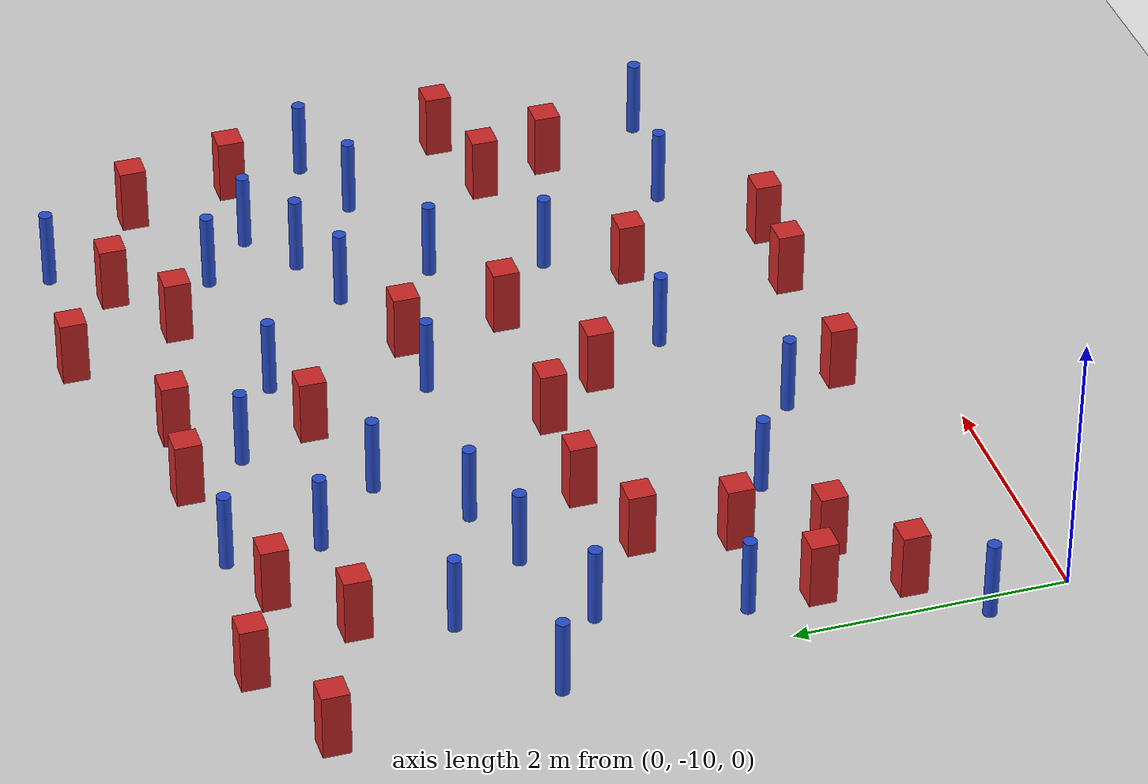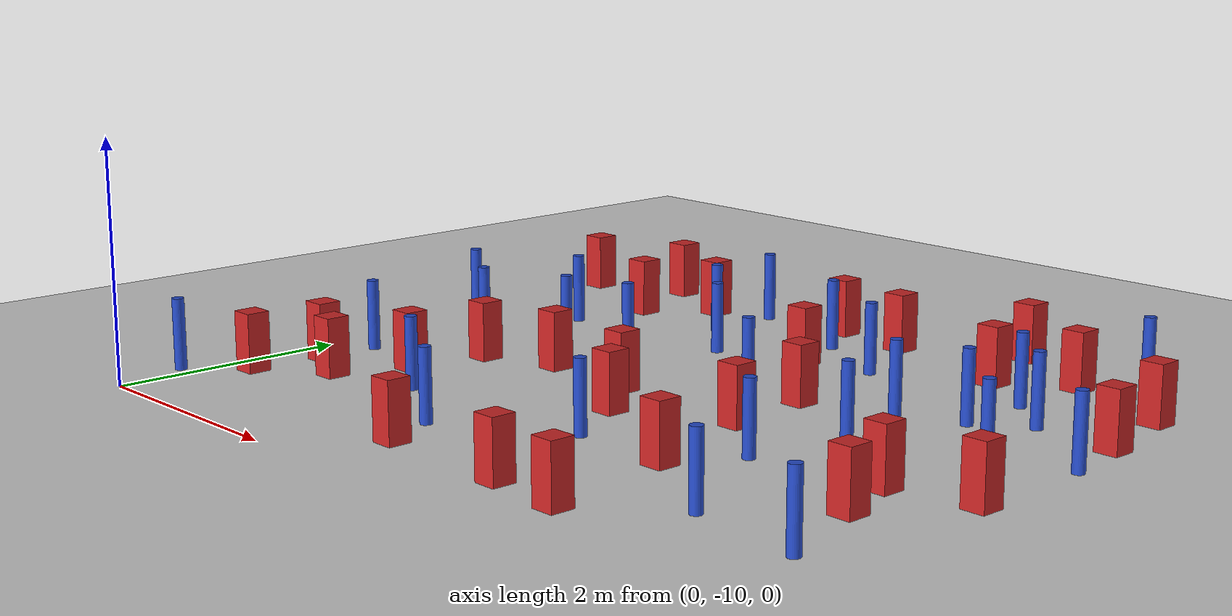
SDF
<sdf version="1.6">
 <world name="default">
  <model name="ground_plane">
   <static>1</static>
   <link name="link">
    <collision name="collision">
     <geometry><plane><normal>0 0 1</normal><size>100 100</size></plane></geometry>
     <surface><friction><ode><mu>100</mu><mu2>50</mu2></ode></friction></surface>
    </collision>
    <visual name="visual">
     <cast_shadows>0</cast_shadows>
     <geometry><plane><normal>0 0 1</normal><size>100 100</size></plane></geometry>
     <material>
      <ambient>1.0 1.0 1.0 1.0</ambient>
      <diffuse>0.8 0.8 0.8 1.0</diffuse>
      <specular>0.01 0.01 0.01 1.000000</specular>
     </material>
    </visual>
   </link>
  </model>
  <model name="square_post_obstacle1">
   <static>true</static>
   <pose>1.90221680884 -7.06881276278 -6.11067671241e-07 -5.50515727128e-06 -8.79689657224e-07 2.37013304536e-05</pose>
   <link name="link">
    <pose>0 0 0.25 0 -0 0</pose>
    <inertial>
     <mass>100</mass>
     <inertia>
      <ixx>0.166667</ixx>
      <ixy>0</ixy>
      <ixz>0</ixz>
      <iyy>0.166667</iyy>
      <iyz>0</iyz>
      <izz>0.166667</izz>
     </inertia>
    </inertial>
    <collision name="collision"><geometry><box><size>.2 .2 .5</size></box></geometry></collision>
    <visual name="visual">
     <geometry><box><size>.2 .2 .5</size></box></geometry>
     <material>
      <script><name>Gazebo/Red</name><uri>file://media/materials/scripts/gazebo.material</uri></script>
     </material>
    </visual>
   </link>
  </model>
  <model name="pole_obstacle3">
   <static>true</static>
   <pose>-0.0956623919668 -6.32274000697 -9.47619616065e-06 5.49618799737e-07 2.36310414062e-07 -1.550905348e-07</pose>
   <link name="link">
    <pose>0 0 0.3 0 -0 0</pose>
    <inertial>
     <mass>1</mass>
     <inertia><ixx>0.145833</ixx><ixy>0</ixy><ixz>0</ixz><iyy>0.145833</iyy><iyz>0</iyz><izz>0.125</izz></inertia>
    </inertial>
    <collision name="collision">
     <geometry><cylinder><radius>0.05</radius><length>.6</length></cylinder></geometry>
    </collision>
    <visual name="visual">
     <geometry><cylinder><radius>0.05</radius><length>.6</length></cylinder></geometry>
     <material>
      <script><name>Gazebo/Blue</name><uri>file://media/materials/scripts/gazebo.material</uri></script>
     </material>
    </visual>
   </link>
  </model>
  <model name="square_post_obstacle10">
   <static>true</static>
   <pose>3.17019763839 -7.59909208464 -6.11067671241e-07 -5.50515727128e-06 -8.79689657224e-07 2.37013304536e-05</pose>
   <link name="link">
    <pose>0 0 0.25 0 -0 0</pose>
    <inertial>
     <mass>100</mass>
     <inertia>
      <ixx>0.166667</ixx>
      <ixy>0</ixy>
      <ixz>0</ixz>
      <iyy>0.166667</iyy>
      <iyz>0</iyz>
      <izz>0.166667</izz>
     </inertia>
    </inertial>
    <collision name="collision"><geometry><box><size>.2 .2 .5</size></box></geometry></collision>
    <visual name="visual">
     <geometry><box><size>.2 .2 .5</size></box></geometry>
     <material>
      <script><name>Gazebo/Red</name><uri>file://media/materials/scripts/gazebo.material</uri></script>
     </material>
    </visual>
   </link>
  </model>
  <model name="square_post_obstacle12">
   <static>true</static>
   <pose>4.40079657541 -8.23585152588 -6.11067671241e-07 -5.50515727128e-06 -8.79689657224e-07 2.37013304536e-05</pose>
   <link name="link">
    <pose>0 0 0.25 0 -0 0</pose>
    <inertial>
     <mass>100</mass>
     <inertia>
      <ixx>0.166667</ixx>
      <ixy>0</ixy>
      <ixz>0</ixz>
      <iyy>0.166667</iyy>
      <iyz>0</iyz>
      <izz>0.166667</izz>
     </inertia>
    </inertial>
    <collision name="collision"><geometry><box><size>.2 .2 .5</size></box></geometry></collision>
    <visual name="visual">
     <geometry><box><size>.2 .2 .5</size></box></geometry>
     <material>
      <script><name>Gazebo/Red</name><uri>file://media/materials/scripts/gazebo.material</uri></script>
     </material>
    </visual>
   </link>
  </model>
  <model name="square_post_obstacle15">
   <static>true</static>
   <pose>0.923780967184 -5.16612636264 -6.11067671241e-07 -5.50515727128e-06 -8.79689657224e-07 2.37013304536e-05</pose>
   <link name="link">
    <pose>0 0 0.25 0 -0 0</pose>
    <inertial>
     <mass>100</mass>
     <inertia>
      <ixx>0.166667</ixx>
      <ixy>0</ixy>
      <ixz>0</ixz>
      <iyy>0.166667</iyy>
      <iyz>0</iyz>
      <izz>0.166667</izz>
     </inertia>
    </inertial>
    <collision name="collision"><geometry><box><size>.2 .2 .5</size></box></geometry></collision>
    <visual name="visual">
     <geometry><box><size>.2 .2 .5</size></box></geometry>
     <material>
      <script><name>Gazebo/Red</name><uri>file://media/materials/scripts/gazebo.material</uri></script>
     </material>
    </visual>
   </link>
  </model>
  <model name="square_post_obstacle17">
   <static>true</static>
   <pose>5.99314138072 -8.07054894317 -6.11067671241e-07 -5.50515727128e-06 -8.79689657224e-07 2.37013304536e-05</pose>
   <link name="link">
    <pose>0 0 0.25 0 -0 0</pose>
    <inertial>
     <mass>100</mass>
     <inertia>
      <ixx>0.166667</ixx>
      <ixy>0</ixy>
      <ixz>0</ixz>
      <iyy>0.166667</iyy>
      <iyz>0</iyz>
      <izz>0.166667</izz>
     </inertia>
    </inertial>
    <collision name="collision"><geometry><box><size>.2 .2 .5</size></box></geometry></collision>
    <visual name="visual">
     <geometry><box><size>.2 .2 .5</size></box></geometry>
     <material>
      <script><name>Gazebo/Red</name><uri>file://media/materials/scripts/gazebo.material</uri></script>
     </material>
    </visual>
   </link>
  </model>
  <model name="pole_obstacle21">
   <static>true</static>
   <pose>3.46122625504 -6.40201713126 -9.47619616065e-06 5.49618799738e-07 2.3631041406e-07 -1.55090534801e-07</pose>
   <link name="link">
    <pose>0 0 0.3 0 -0 0</pose>
    <inertial>
     <mass>1</mass>
     <inertia><ixx>0.145833</ixx><ixy>0</ixy><ixz>0</ixz><iyy>0.145833</iyy><iyz>0</iyz><izz>0.125</izz></inertia>
    </inertial>
    <collision name="collision">
     <geometry><cylinder><radius>0.05</radius><length>.6</length></cylinder></geometry>
    </collision>
    <visual name="visual">
     <geometry><cylinder><radius>0.05</radius><length>.6</length></cylinder></geometry>
     <material>
      <script><name>Gazebo/Blue</name><uri>file://media/materials/scripts/gazebo.material</uri></script>
     </material>
    </visual>
   </link>
  </model>
  <model name="square_post_obstacle20">
   <static>true</static>
   <pose>0.624835009478 -4.36766719274 -6.11067671241e-07 -5.50515727128e-06 -8.79689657224e-07 2.37013304536e-05</pose>
   <link name="link">
    <pose>0 0 0.25 0 -0 0</pose>
    <inertial>
     <mass>100</mass>
     <inertia>
      <ixx>0.166667</ixx>
      <ixy>0</ixy>
      <ixz>0</ixz>
      <iyy>0.166667</iyy>
      <iyz>0</iyz>
      <izz>0.166667</izz>
     </inertia>
    </inertial>
    <collision name="collision"><geometry><box><size>.2 .2 .5</size></box></geometry></collision>
    <visual name="visual">
     <geometry><box><size>.2 .2 .5</size></box></geometry>
     <material>
      <script><name>Gazebo/Red</name><uri>file://media/materials/scripts/gazebo.material</uri></script>
     </material>
    </visual>
   </link>
  </model>
  <model name="square_post_obstacle21">
   <static>true</static>
   <pose>1.1205179076 -7.96489127767 -6.11067671241e-07 -5.50515727128e-06 -8.79689657224e-07 2.37013304536e-05</pose>
   <link name="link">
    <pose>0 0 0.25 0 -0 0</pose>
    <inertial>
     <mass>100</mass>
     <inertia>
      <ixx>0.166667</ixx>
      <ixy>0</ixy>
      <ixz>0</ixz>
      <iyy>0.166667</iyy>
      <iyz>0</iyz>
      <izz>0.166667</izz>
     </inertia>
    </inertial>
    <collision name="collision"><geometry><box><size>.2 .2 .5</size></box></geometry></collision>
    <visual name="visual">
     <geometry><box><size>.2 .2 .5</size></box></geometry>
     <material>
      <script><name>Gazebo/Red</name><uri>file://media/materials/scripts/gazebo.material</uri></script>
     </material>
    </visual>
   </link>
  </model>
  <model name="square_post_obstacle29">
   <static>true</static>
   <pose>6.18455835124 -4.8553304851 -6.11067671241e-07 -5.50515727128e-06 -8.79689657224e-07 2.37013304536e-05</pose>
   <link name="link">
    <pose>0 0 0.25 0 -0 0</pose>
    <inertial>
     <mass>100</mass>
     <inertia>
      <ixx>0.166667</ixx>
      <ixy>0</ixy>
      <ixz>0</ixz>
      <iyy>0.166667</iyy>
      <iyz>0</iyz>
      <izz>0.166667</izz>
     </inertia>
    </inertial>
    <collision name="collision"><geometry><box><size>.2 .2 .5</size></box></geometry></collision>
    <visual name="visual">
     <geometry><box><size>.2 .2 .5</size></box></geometry>
     <material>
      <script><name>Gazebo/Red</name><uri>file://media/materials/scripts/gazebo.material</uri></script>
     </material>
    </visual>
   </link>
  </model>
  <model name="pole_obstacle36">
   <static>true</static>
   <pose>2.41987937067 -5.7076169311 -9.47619616065e-06 5.49618799738e-07 2.3631041406e-07 -1.55090534801e-07</pose>
   <link name="link">
    <pose>0 0 0.3 0 -0 0</pose>
    <inertial>
     <mass>1</mass>
     <inertia><ixx>0.145833</ixx><ixy>0</ixy><ixz>0</ixz><iyy>0.145833</iyy><iyz>0</iyz><izz>0.125</izz></inertia>
    </inertial>
    <collision name="collision">
     <geometry><cylinder><radius>0.05</radius><length>.6</length></cylinder></geometry>
    </collision>
    <visual name="visual">
     <geometry><cylinder><radius>0.05</radius><length>.6</length></cylinder></geometry>
     <material>
      <script><name>Gazebo/Blue</name><uri>file://media/materials/scripts/gazebo.material</uri></script>
     </material>
    </visual>
   </link>
  </model>
  <model name="pole_obstacle39">
   <static>true</static>
   <pose>-0.154270674487 -9.36307981008 -9.47619616065e-06 5.49618799737e-07 2.36310414038e-07 -1.55090534815e-07</pose>
   <link name="link">
    <pose>0 0 0.3 0 -0 0</pose>
    <inertial>
     <mass>1</mass>
     <inertia><ixx>0.145833</ixx><ixy>0</ixy><ixz>0</ixz><iyy>0.145833</iyy><iyz>0</iyz><izz>0.125</izz></inertia>
    </inertial>
    <collision name="collision">
     <geometry><cylinder><radius>0.05</radius><length>.6</length></cylinder></geometry>
    </collision>
    <visual name="visual">
     <geometry><cylinder><radius>0.05</radius><length>.6</length></cylinder></geometry>
     <material>
      <script><name>Gazebo/Blue</name><uri>file://media/materials/scripts/gazebo.material</uri></script>
     </material>
    </visual>
   </link>
  </model>
  <model name="square_post_obstacle34">
   <static>true</static>
   <pose>4.6058372491 -9.38448085842 -6.11067671241e-07 -5.50515727128e-06 -8.79689657224e-07 2.37013304536e-05</pose>
   <link name="link">
    <pose>0 0 0.25 0 -0 0</pose>
    <inertial>
     <mass>100</mass>
     <inertia>
      <ixx>0.166667</ixx>
      <ixy>0</ixy>
      <ixz>0</ixz>
      <iyy>0.166667</iyy>
      <iyz>0</iyz>
      <izz>0.166667</izz>
     </inertia>
    </inertial>
    <collision name="collision"><geometry><box><size>.2 .2 .5</size></box></geometry></collision>
    <visual name="visual">
     <geometry><box><size>.2 .2 .5</size></box></geometry>
     <material>
      <script><name>Gazebo/Red</name><uri>file://media/materials/scripts/gazebo.material</uri></script>
     </material>
    </visual>
   </link>
  </model>
  <model name="pole_obstacle44">
   <static>true</static>
   <pose>5.86850376428 -6.47492850692 -9.47619616065e-06 5.49618799737e-07 2.36310414037e-07 -1.55090534814e-07</pose>
   <link name="link">
    <pose>0 0 0.3 0 -0 0</pose>
    <inertial>
     <mass>1</mass>
     <inertia><ixx>0.145833</ixx><ixy>0</ixy><ixz>0</ixz><iyy>0.145833</iyy><iyz>0</iyz><izz>0.125</izz></inertia>
    </inertial>
    <collision name="collision">
     <geometry><cylinder><radius>0.05</radius><length>.6</length></cylinder></geometry>
    </collision>
    <visual name="visual">
     <geometry><cylinder><radius>0.05</radius><length>.6</length></cylinder></geometry>
     <material>
      <script><name>Gazebo/Blue</name><uri>file://media/materials/scripts/gazebo.material</uri></script>
     </material>
    </visual>
   </link>
  </model>
  <model name="pole_obstacle54">
   <static>true</static>
   <pose>4.70921393497 -6.09440306685 -9.47619616065e-06 5.49618799737e-07 2.36310414037e-07 -1.55090534814e-07</pose>
   <link name="link">
    <pose>0 0 0.3 0 -0 0</pose>
    <inertial>
     <mass>1</mass>
     <inertia><ixx>0.145833</ixx><ixy>0</ixy><ixz>0</ixz><iyy>0.145833</iyy><iyz>0</iyz><izz>0.125</izz></inertia>
    </inertial>
    <collision name="collision">
     <geometry><cylinder><radius>0.05</radius><length>.6</length></cylinder></geometry>
    </collision>
    <visual name="visual">
     <geometry><cylinder><radius>0.05</radius><length>.6</length></cylinder></geometry>
     <material>
      <script><name>Gazebo/Blue</name><uri>file://media/materials/scripts/gazebo.material</uri></script>
     </material>
    </visual>
   </link>
  </model>
  <model name="pole_obstacle55">
   <static>true</static>
   <pose>5.59335642889 -4.07822413194 -9.47619616065e-06 5.49618799737e-07 2.36310414037e-07 -1.55090534814e-07</pose>
   <link name="link">
    <pose>0 0 0.3 0 -0 0</pose>
    <inertial>
     <mass>1</mass>
     <inertia><ixx>0.145833</ixx><ixy>0</ixy><ixz>0</ixz><iyy>0.145833</iyy><iyz>0</iyz><izz>0.125</izz></inertia>
    </inertial>
    <collision name="collision">
     <geometry><cylinder><radius>0.05</radius><length>.6</length></cylinder></geometry>
    </collision>
    <visual name="visual">
     <geometry><cylinder><radius>0.05</radius><length>.6</length></cylinder></geometry>
     <material>
      <script><name>Gazebo/Blue</name><uri>file://media/materials/scripts/gazebo.material</uri></script>
     </material>
    </visual>
   </link>
  </model>
  <model name="square_post_obstacle49">
   <static>true</static>
   <pose>3.93376461186 -9.32738936467 -6.11067671241e-07 -5.50515727128e-06 -8.79689657224e-07 2.37013304536e-05</pose>
   <link name="link">
    <pose>0 0 0.25 0 -0 0</pose>
    <inertial>
     <mass>100</mass>
     <inertia>
      <ixx>0.166667</ixx>
      <ixy>0</ixy>
      <ixz>0</ixz>
      <iyy>0.166667</iyy>
      <iyz>0</iyz>
      <izz>0.166667</izz>
     </inertia>
    </inertial>
    <collision name="collision"><geometry><box><size>.2 .2 .5</size></box></geometry></collision>
    <visual name="visual">
     <geometry><box><size>.2 .2 .5</size></box></geometry>
     <material>
      <script><name>Gazebo/Red</name><uri>file://media/materials/scripts/gazebo.material</uri></script>
     </material>
    </visual>
   </link>
  </model>
  <model name="pole_obstacle65">
   <static>true</static>
   <pose>0.762552935195 -5.82408993709 -9.47619616065e-06 5.49618799737e-07 2.36310414065e-07 -1.55090534796e-07</pose>
   <link name="link">
    <pose>0 0 0.3 0 -0 0</pose>
    <inertial>
     <mass>1</mass>
     <inertia><ixx>0.145833</ixx><ixy>0</ixy><ixz>0</ixz><iyy>0.145833</iyy><iyz>0</iyz><izz>0.125</izz></inertia>
    </inertial>
    <collision name="collision">
     <geometry><cylinder><radius>0.05</radius><length>.6</length></cylinder></geometry>
    </collision>
    <visual name="visual">
     <geometry><cylinder><radius>0.05</radius><length>.6</length></cylinder></geometry>
     <material>
      <script><name>Gazebo/Blue</name><uri>file://media/materials/scripts/gazebo.material</uri></script>
     </material>
    </visual>
   </link>
  </model>
  <model name="square_post_obstacle50">
   <static>true</static>
   <pose>0.278762487672 -8.93921164825 -6.11067671241e-07 -5.50515727128e-06 -8.79689657224e-07 2.37013304536e-05</pose>
   <link name="link">
    <pose>0 0 0.25 0 -0 0</pose>
    <inertial>
     <mass>100</mass>
     <inertia>
      <ixx>0.166667</ixx>
      <ixy>0</ixy>
      <ixz>0</ixz>
      <iyy>0.166667</iyy>
      <iyz>0</iyz>
      <izz>0.166667</izz>
     </inertia>
    </inertial>
    <collision name="collision"><geometry><box><size>.2 .2 .5</size></box></geometry></collision>
    <visual name="visual">
     <geometry><box><size>.2 .2 .5</size></box></geometry>
     <material>
      <script><name>Gazebo/Red</name><uri>file://media/materials/scripts/gazebo.material</uri></script>
     </material>
    </visual>
   </link>
  </model>
  <model name="pole_obstacle67">
   <static>true</static>
   <pose>1.88777173425 -4.50713236287 -9.47619616065e-06 5.49618799737e-07 2.36310414061e-07 -1.550905348e-07</pose>
   <link name="link">
    <pose>0 0 0.3 0 -0 0</pose>
    <inertial>
     <mass>1</mass>
     <inertia><ixx>0.145833</ixx><ixy>0</ixy><ixz>0</ixz><iyy>0.145833</iyy><iyz>0</iyz><izz>0.125</izz></inertia>
    </inertial>
    <collision name="collision">
     <geometry><cylinder><radius>0.05</radius><length>.6</length></cylinder></geometry>
    </collision>
    <visual name="visual">
     <geometry><cylinder><radius>0.05</radius><length>.6</length></cylinder></geometry>
     <material>
      <script><name>Gazebo/Blue</name><uri>file://media/materials/scripts/gazebo.material</uri></script>
     </material>
    </visual>
   </link>
  </model>
  <model name="square_post_obstacle59">
   <static>true</static>
   <pose>6.49951302498 -7.34494164126 -6.11067671241e-07 -5.50515727128e-06 -8.79689657224e-07 2.37013304536e-05</pose>
   <link name="link">
    <pose>0 0 0.25 0 -0 0</pose>
    <inertial>
     <mass>100</mass>
     <inertia>
      <ixx>0.166667</ixx>
      <ixy>0</ixy>
      <ixz>0</ixz>
      <iyy>0.166667</iyy>
      <iyz>0</iyz>
      <izz>0.166667</izz>
     </inertia>
    </inertial>
    <collision name="collision"><geometry><box><size>.2 .2 .5</size></box></geometry></collision>
    <visual name="visual">
     <geometry><box><size>.2 .2 .5</size></box></geometry>
     <material>
      <script><name>Gazebo/Red</name><uri>file://media/materials/scripts/gazebo.material</uri></script>
     </material>
    </visual>
   </link>
  </model>
  <model name="pole_obstacle71">
   <static>true</static>
   <pose>2.48449733833 -8.82898248215 -9.4761961606e-06 5.49618799729e-07 2.36310414e-07 -1.55090534824e-07</pose>
   <link name="link">
    <pose>0 0 0.3 0 -0 0</pose>
    <inertial>
     <mass>1</mass>
     <inertia><ixx>0.145833</ixx><ixy>0</ixy><ixz>0</ixz><iyy>0.145833</iyy><iyz>0</iyz><izz>0.125</izz></inertia>
    </inertial>
    <collision name="collision">
     <geometry><cylinder><radius>0.05</radius><length>.6</length></cylinder></geometry>
    </collision>
    <visual name="visual">
     <geometry><cylinder><radius>0.05</radius><length>.6</length></cylinder></geometry>
     <material>
      <script><name>Gazebo/Blue</name><uri>file://media/materials/scripts/gazebo.material</uri></script>
     </material>
    </visual>
   </link>
  </model>
  <model name="pole_obstacle73">
   <static>true</static>
   <pose>1.90508628922 -6.26551752722 -9.47619616065e-06 5.49618799737e-07 2.36310414061e-07 -1.550905348e-07</pose>
   <link name="link">
    <pose>0 0 0.3 0 -0 0</pose>
    <inertial>
     <mass>1</mass>
     <inertia><ixx>0.145833</ixx><ixy>0</ixy><ixz>0</ixz><iyy>0.145833</iyy><iyz>0</iyz><izz>0.125</izz></inertia>
    </inertial>
    <collision name="collision">
     <geometry><cylinder><radius>0.05</radius><length>.6</length></cylinder></geometry>
    </collision>
    <visual name="visual">
     <geometry><cylinder><radius>0.05</radius><length>.6</length></cylinder></geometry>
     <material>
      <script><name>Gazebo/Blue</name><uri>file://media/materials/scripts/gazebo.material</uri></script>
     </material>
    </visual>
   </link>
  </model>
  <model name="pole_obstacle80">
   <static>true</static>
   <pose>3.50712779258 -8.19455391345 -9.4761961606e-06 5.49618799729e-07 2.36310414e-07 -1.55090534824e-07</pose>
   <link name="link">
    <pose>0 0 0.3 0 -0 0</pose>
    <inertial>
     <mass>1</mass>
     <inertia><ixx>0.145833</ixx><ixy>0</ixy><ixz>0</ixz><iyy>0.145833</iyy><iyz>0</iyz><izz>0.125</izz></inertia>
    </inertial>
    <collision name="collision">
     <geometry><cylinder><radius>0.05</radius><length>.6</length></cylinder></geometry>
    </collision>
    <visual name="visual">
     <geometry><cylinder><radius>0.05</radius><length>.6</length></cylinder></geometry>
     <material>
      <script><name>Gazebo/Blue</name><uri>file://media/materials/scripts/gazebo.material</uri></script>
     </material>
    </visual>
   </link>
  </model>
  <model name="pole_obstacle88">
   <static>true</static>
   <pose>1.89037246556 -5.18558917002 -9.47619616065e-06 5.49618799737e-07 2.36310414061e-07 -1.550905348e-07</pose>
   <link name="link">
    <pose>0 0 0.3 0 -0 0</pose>
    <inertial>
     <mass>1</mass>
     <inertia><ixx>0.145833</ixx><ixy>0</ixy><ixz>0</ixz><iyy>0.145833</iyy><iyz>0</iyz><izz>0.125</izz></inertia>
    </inertial>
    <collision name="collision">
     <geometry><cylinder><radius>0.05</radius><length>.6</length></cylinder></geometry>
    </collision>
    <visual name="visual">
     <geometry><cylinder><radius>0.05</radius><length>.6</length></cylinder></geometry>
     <material>
      <script><name>Gazebo/Blue</name><uri>file://media/materials/scripts/gazebo.material</uri></script>
     </material>
    </visual>
   </link>
  </model>
  <model name="square_post_obstacle79">
   <static>true</static>
   <pose>0.36819951724 -8.30636449771 -6.11067671241e-07 -5.50515727128e-06 -8.79689657224e-07 2.37013304536e-05</pose>
   <link name="link">
    <pose>0 0 0.25 0 -0 0</pose>
    <inertial>
     <mass>100</mass>
     <inertia>
      <ixx>0.166667</ixx>
      <ixy>0</ixy>
      <ixz>0</ixz>
      <iyy>0.166667</iyy>
      <iyz>0</iyz>
      <izz>0.166667</izz>
     </inertia>
    </inertial>
    <collision name="collision"><geometry><box><size>.2 .2 .5</size></box></geometry></collision>
    <visual name="visual">
     <geometry><box><size>.2 .2 .5</size></box></geometry>
     <material>
      <script><name>Gazebo/Red</name><uri>file://media/materials/scripts/gazebo.material</uri></script>
     </material>
    </visual>
   </link>
  </model>
  <model name="pole_obstacle92">
   <static>true</static>
   <pose>0.360559666833 -7.79410350933 -9.47619616065e-06 5.49618799737e-07 2.36310414065e-07 -1.55090534796e-07</pose>
   <link name="link">
    <pose>0 0 0.3 0 -0 0</pose>
    <inertial>
     <mass>1</mass>
     <inertia><ixx>0.145833</ixx><ixy>0</ixy><ixz>0</ixz><iyy>0.145833</iyy><iyz>0</iyz><izz>0.125</izz></inertia>
    </inertial>
    <collision name="collision">
     <geometry><cylinder><radius>0.05</radius><length>.6</length></cylinder></geometry>
    </collision>
    <visual name="visual">
     <geometry><cylinder><radius>0.05</radius><length>.6</length></cylinder></geometry>
     <material>
      <script><name>Gazebo/Blue</name><uri>file://media/materials/scripts/gazebo.material</uri></script>
     </material>
    </visual>
   </link>
  </model>
  <model name="pole_obstacle95">
   <static>true</static>
   <pose>5.21282685171 -5.21101258975 -9.47619616065e-06 5.49618799737e-07 2.36310414037e-07 -1.55090534814e-07</pose>
   <link name="link">
    <pose>0 0 0.3 0 -0 0</pose>
    <inertial>
     <mass>1</mass>
     <inertia><ixx>0.145833</ixx><ixy>0</ixy><ixz>0</ixz><iyy>0.145833</iyy><iyz>0</iyz><izz>0.125</izz></inertia>
    </inertial>
    <collision name="collision">
     <geometry><cylinder><radius>0.05</radius><length>.6</length></cylinder></geometry>
    </collision>
    <visual name="visual">
     <geometry><cylinder><radius>0.05</radius><length>.6</length></cylinder></geometry>
     <material>
      <script><name>Gazebo/Blue</name><uri>file://media/materials/scripts/gazebo.material</uri></script>
     </material>
    </visual>
   </link>
  </model>
  <model name="square_post_obstacle120">
   <static>true</static>
   <pose>3.19070530143 -5.45883548213 -6.11067671241e-07 -5.50515727128e-06 -8.79689657224e-07 2.37013304536e-05</pose>
   <link name="link">
    <pose>0 0 0.25 0 -0 0</pose>
    <inertial>
     <mass>100</mass>
     <inertia>
      <ixx>0.166667</ixx>
      <ixy>0</ixy>
      <ixz>0</ixz>
      <iyy>0.166667</iyy>
      <iyz>0</iyz>
      <izz>0.166667</izz>
     </inertia>
    </inertial>
    <collision name="collision"><geometry><box><size>.2 .2 .5</size></box></geometry></collision>
    <visual name="visual">
     <geometry><box><size>.2 .2 .5</size></box></geometry>
     <material>
      <script><name>Gazebo/Red</name><uri>file://media/materials/scripts/gazebo.material</uri></script>
     </material>
    </visual>
   </link>
  </model>
  <model name="pole_obstacle124">
   <static>true</static>
   <pose>3.78200364046 -5.30811447415 -9.47619616065e-06 5.49618799738e-07 2.3631041406e-07 -1.55090534801e-07</pose>
   <link name="link">
    <pose>0 0 0.3 0 -0 0</pose>
    <inertial>
     <mass>1</mass>
     <inertia><ixx>0.145833</ixx><ixy>0</ixy><ixz>0</ixz><iyy>0.145833</iyy><iyz>0</iyz><izz>0.125</izz></inertia>
    </inertial>
    <collision name="collision">
     <geometry><cylinder><radius>0.05</radius><length>.6</length></cylinder></geometry>
    </collision>
    <visual name="visual">
     <geometry><cylinder><radius>0.05</radius><length>.6</length></cylinder></geometry>
     <material>
      <script><name>Gazebo/Blue</name><uri>file://media/materials/scripts/gazebo.material</uri></script>
     </material>
    </visual>
   </link>
  </model>
  <model name="square_post_obstacle127">
   <static>true</static>
   <pose>4.66207362287 -4.8289467398 -6.11067671241e-07 -5.50515727128e-06 -8.79689657224e-07 2.37013304536e-05</pose>
   <link name="link">
    <pose>0 0 0.25 0 -0 0</pose>
    <inertial>
     <mass>100</mass>
     <inertia>
      <ixx>0.166667</ixx>
      <ixy>0</ixy>
      <ixz>0</ixz>
      <iyy>0.166667</iyy>
      <iyz>0</iyz>
      <izz>0.166667</izz>
     </inertia>
    </inertial>
    <collision name="collision"><geometry><box><size>.2 .2 .5</size></box></geometry></collision>
    <visual name="visual">
     <geometry><box><size>.2 .2 .5</size></box></geometry>
     <material>
      <script><name>Gazebo/Red</name><uri>file://media/materials/scripts/gazebo.material</uri></script>
     </material>
    </visual>
   </link>
  </model>
  <model name="square_post_obstacle128">
   <static>true</static>
   <pose>2.72873598612 -4.43685192855 -6.11067671241e-07 -5.50515727128e-06 -8.79689657224e-07 2.37013304536e-05</pose>
   <link name="link">
    <pose>0 0 0.25 0 -0 0</pose>
    <inertial>
     <mass>100</mass>
     <inertia>
      <ixx>0.166667</ixx>
      <ixy>0</ixy>
      <ixz>0</ixz>
      <iyy>0.166667</iyy>
      <iyz>0</iyz>
      <izz>0.166667</izz>
     </inertia>
    </inertial>
    <collision name="collision"><geometry><box><size>.2 .2 .5</size></box></geometry></collision>
    <visual name="visual">
     <geometry><box><size>.2 .2 .5</size></box></geometry>
     <material>
      <script><name>Gazebo/Red</name><uri>file://media/materials/scripts/gazebo.material</uri></script>
     </material>
    </visual>
   </link>
  </model>
  <model name="square_post_obstacle137">
   <static>true</static>
   <pose>0.850056143519 -8.5500607031 -6.11067671241e-07 -5.50515727128e-06 -8.79689657224e-07 2.37013304536e-05</pose>
   <link name="link">
    <pose>0 0 0.25 0 -0 0</pose>
    <inertial>
     <mass>100</mass>
     <inertia>
      <ixx>0.166667</ixx>
      <ixy>0</ixy>
      <ixz>0</ixz>
      <iyy>0.166667</iyy>
      <iyz>0</iyz>
      <izz>0.166667</izz>
     </inertia>
    </inertial>
    <collision name="collision"><geometry><box><size>.2 .2 .5</size></box></geometry></collision>
    <visual name="visual">
     <geometry><box><size>.2 .2 .5</size></box></geometry>
     <material>
      <script><name>Gazebo/Red</name><uri>file://media/materials/scripts/gazebo.material</uri></script>
     </material>
    </visual>
   </link>
  </model>
  <model name="square_post_obstacle149">
   <static>true</static>
   <pose>4.38998303831 -3.99117839104 -6.11067671241e-07 -5.50515727128e-06 -8.79689657224e-07 2.37013304536e-05</pose>
   <link name="link">
    <pose>0 0 0.25 0 -0 0</pose>
    <inertial>
     <mass>100</mass>
     <inertia>
      <ixx>0.166667</ixx>
      <ixy>0</ixy>
      <ixz>0</ixz>
      <iyy>0.166667</iyy>
      <iyz>0</iyz>
      <izz>0.166667</izz>
     </inertia>
    </inertial>
    <collision name="collision"><geometry><box><size>.2 .2 .5</size></box></geometry></collision>
    <visual name="visual">
     <geometry><box><size>.2 .2 .5</size></box></geometry>
     <material>
      <script><name>Gazebo/Red</name><uri>file://media/materials/scripts/gazebo.material</uri></script>
     </material>
    </visual>
   </link>
  </model>
  <model name="pole_obstacle154">
   <static>true</static>
   <pose>3.00690768177 -4.90442672456 -9.47619616065e-06 5.49618799738e-07 2.3631041406e-07 -1.55090534801e-07</pose>
   <link name="link">
    <pose>0 0 0.3 0 -0 0</pose>
    <inertial>
     <mass>1</mass>
     <inertia><ixx>0.145833</ixx><ixy>0</ixy><ixz>0</ixz><iyy>0.145833</iyy><iyz>0</iyz><izz>0.125</izz></inertia>
    </inertial>
    <collision name="collision">
     <geometry><cylinder><radius>0.05</radius><length>.6</length></cylinder></geometry>
    </collision>
    <visual name="visual">
     <geometry><cylinder><radius>0.05</radius><length>.6</length></cylinder></geometry>
     <material>
      <script><name>Gazebo/Blue</name><uri>file://media/materials/scripts/gazebo.material</uri></script>
     </material>
    </visual>
   </link>
  </model>
  <model name="square_post_obstacle152">
   <static>true</static>
   <pose>4.08668692918 -7.16434014384 -6.11067671241e-07 -5.50515727128e-06 -8.79689657224e-07 2.37013304536e-05</pose>
   <link name="link">
    <pose>0 0 0.25 0 -0 0</pose>
    <inertial>
     <mass>100</mass>
     <inertia>
      <ixx>0.166667</ixx>
      <ixy>0</ixy>
      <ixz>0</ixz>
      <iyy>0.166667</iyy>
      <iyz>0</iyz>
      <izz>0.166667</izz>
     </inertia>
    </inertial>
    <collision name="collision"><geometry><box><size>.2 .2 .5</size></box></geometry></collision>
    <visual name="visual">
     <geometry><box><size>.2 .2 .5</size></box></geometry>
     <material>
      <script><name>Gazebo/Red</name><uri>file://media/materials/scripts/gazebo.material</uri></script>
     </material>
    </visual>
   </link>
  </model>
  <model name="pole_obstacle158">
   <static>true</static>
   <pose>4.87582728599 -6.82598247941 -9.47619616065e-06 5.49618799737e-07 2.36310414037e-07 -1.55090534814e-07</pose>
   <link name="link">
    <pose>0 0 0.3 0 -0 0</pose>
    <inertial>
     <mass>1</mass>
     <inertia><ixx>0.145833</ixx><ixy>0</ixy><ixz>0</ixz><iyy>0.145833</iyy><iyz>0</iyz><izz>0.125</izz></inertia>
    </inertial>
    <collision name="collision">
     <geometry><cylinder><radius>0.05</radius><length>.6</length></cylinder></geometry>
    </collision>
    <visual name="visual">
     <geometry><cylinder><radius>0.05</radius><length>.6</length></cylinder></geometry>
     <material>
      <script><name>Gazebo/Blue</name><uri>file://media/materials/scripts/gazebo.material</uri></script>
     </material>
    </visual>
   </link>
  </model>
  <model name="square_post_obstacle157">
   <static>true</static>
   <pose>2.70108148153 -9.29278653202 -6.11067671241e-07 -5.50515727128e-06 -8.79689657224e-07 2.37013304536e-05</pose>
   <link name="link">
    <pose>0 0 0.25 0 -0 0</pose>
    <inertial>
     <mass>100</mass>
     <inertia>
      <ixx>0.166667</ixx>
      <ixy>0</ixy>
      <ixz>0</ixz>
      <iyy>0.166667</iyy>
      <iyz>0</iyz>
      <izz>0.166667</izz>
     </inertia>
    </inertial>
    <collision name="collision"><geometry><box><size>.2 .2 .5</size></box></geometry></collision>
    <visual name="visual">
     <geometry><box><size>.2 .2 .5</size></box></geometry>
     <material>
      <script><name>Gazebo/Red</name><uri>file://media/materials/scripts/gazebo.material</uri></script>
     </material>
    </visual>
   </link>
  </model>
  <model name="square_post_obstacle159">
   <static>true</static>
   <pose>1.25657172562 -7.29005758324 -6.11067671241e-07 -5.50515727128e-06 -8.79689657224e-07 2.37013304536e-05</pose>
   <link name="link">
    <pose>0 0 0.25 0 -0 0</pose>
    <inertial>
     <mass>100</mass>
     <inertia>
      <ixx>0.166667</ixx>
      <ixy>0</ixy>
      <ixz>0</ixz>
      <iyy>0.166667</iyy>
      <iyz>0</iyz>
      <izz>0.166667</izz>
     </inertia>
    </inertial>
    <collision name="collision"><geometry><box><size>.2 .2 .5</size></box></geometry></collision>
    <visual name="visual">
     <geometry><box><size>.2 .2 .5</size></box></geometry>
     <material>
      <script><name>Gazebo/Red</name><uri>file://media/materials/scripts/gazebo.material</uri></script>
     </material>
    </visual>
   </link>
  </model>
  <model name="square_post_obstacle162">
   <static>true</static>
   <pose>1.40677673367 -4.71373804411 -6.11067671241e-07 -5.50515727128e-06 -8.79689657224e-07 2.37013304536e-05</pose>
   <link name="link">
    <pose>0 0 0.25 0 -0 0</pose>
    <inertial>
     <mass>100</mass>
     <inertia>
      <ixx>0.166667</ixx>
      <ixy>0</ixy>
      <ixz>0</ixz>
      <iyy>0.166667</iyy>
      <iyz>0</iyz>
      <izz>0.166667</izz>
     </inertia>
    </inertial>
    <collision name="collision"><geometry><box><size>.2 .2 .5</size></box></geometry></collision>
    <visual name="visual">
     <geometry><box><size>.2 .2 .5</size></box></geometry>
     <material>
      <script><name>Gazebo/Red</name><uri>file://media/materials/scripts/gazebo.material</uri></script>
     </material>
    </visual>
   </link>
  </model>
  <model name="pole_obstacle166">
   <static>true</static>
   <pose>5.31172259696 -8.77553307049 -9.47619616065e-06 5.49618799737e-07 2.36310414065e-07 -1.55090534796e-07</pose>
   <link name="link">
    <pose>0 0 0.3 0 -0 0</pose>
    <inertial>
     <mass>1</mass>
     <inertia><ixx>0.145833</ixx><ixy>0</ixy><ixz>0</ixz><iyy>0.145833</iyy><iyz>0</iyz><izz>0.125</izz></inertia>
    </inertial>
    <collision name="collision">
     <geometry><cylinder><radius>0.05</radius><length>.6</length></cylinder></geometry>
    </collision>
    <visual name="visual">
     <geometry><cylinder><radius>0.05</radius><length>.6</length></cylinder></geometry>
     <material>
      <script><name>Gazebo/Blue</name><uri>file://media/materials/scripts/gazebo.material</uri></script>
     </material>
    </visual>
   </link>
  </model>
  <model name="square_post_obstacle166">
   <static>true</static>
   <pose>5.80939817268 -7.51534573787 -6.11067671241e-07 -5.50515727128e-06 -8.79689657224e-07 2.37013304536e-05</pose>
   <link name="link">
    <pose>0 0 0.25 0 -0 0</pose>
    <inertial>
     <mass>100</mass>
     <inertia>
      <ixx>0.166667</ixx>
      <ixy>0</ixy>
      <ixz>0</ixz>
      <iyy>0.166667</iyy>
      <iyz>0</iyz>
      <izz>0.166667</izz>
     </inertia>
    </inertial>
    <collision name="collision"><geometry><box><size>.2 .2 .5</size></box></geometry></collision>
    <visual name="visual">
     <geometry><box><size>.2 .2 .5</size></box></geometry>
     <material>
      <script><name>Gazebo/Red</name><uri>file://media/materials/scripts/gazebo.material</uri></script>
     </material>
    </visual>
   </link>
  </model>
  <model name="pole_obstacle173">
   <static>true</static>
   <pose>1.32692413497 -6.45532064036 -9.47619616065e-06 5.49618799737e-07 2.36310414061e-07 -1.550905348e-07</pose>
   <link name="link">
    <pose>0 0 0.3 0 -0 0</pose>
    <inertial>
     <mass>1</mass>
     <inertia><ixx>0.145833</ixx><ixy>0</ixy><ixz>0</ixz><iyy>0.145833</iyy><iyz>0</iyz><izz>0.125</izz></inertia>
    </inertial>
    <collision name="collision">
     <geometry><cylinder><radius>0.05</radius><length>.6</length></cylinder></geometry>
    </collision>
    <visual name="visual">
     <geometry><cylinder><radius>0.05</radius><length>.6</length></cylinder></geometry>
     <material>
      <script><name>Gazebo/Blue</name><uri>file://media/materials/scripts/gazebo.material</uri></script>
     </material>
    </visual>
   </link>
  </model>
  <model name="pole_obstacle178">
   <static>true</static>
   <pose>1.63505888921 -8.33164737301 -9.47619616065e-06 5.49618799737e-07 2.36310414046e-07 -1.55090534809e-07</pose>
   <link name="link">
    <pose>0 0 0.3 0 -0 0</pose>
    <inertial>
     <mass>1</mass>
     <inertia><ixx>0.145833</ixx><ixy>0</ixy><ixz>0</ixz><iyy>0.145833</iyy><iyz>0</iyz><izz>0.125</izz></inertia>
    </inertial>
    <collision name="collision">
     <geometry><cylinder><radius>0.05</radius><length>.6</length></cylinder></geometry>
    </collision>
    <visual name="visual">
     <geometry><cylinder><radius>0.05</radius><length>.6</length></cylinder></geometry>
     <material>
      <script><name>Gazebo/Blue</name><uri>file://media/materials/scripts/gazebo.material</uri></script>
     </material>
    </visual>
   </link>
  </model>
  <model name="square_post_obstacle176">
   <static>true</static>
   <pose>6.35954932589 -5.65945364754 -6.11067671241e-07 -5.50515727128e-06 -8.79689657224e-07 2.37013304536e-05</pose>
   <link name="link">
    <pose>0 0 0.25 0 -0 0</pose>
    <inertial>
     <mass>100</mass>
     <inertia>
      <ixx>0.166667</ixx>
      <ixy>0</ixy>
      <ixz>0</ixz>
      <iyy>0.166667</iyy>
      <iyz>0</iyz>
      <izz>0.166667</izz>
     </inertia>
    </inertial>
    <collision name="collision"><geometry><box><size>.2 .2 .5</size></box></geometry></collision>
    <visual name="visual">
     <geometry><box><size>.2 .2 .5</size></box></geometry>
     <material>
      <script><name>Gazebo/Red</name><uri>file://media/materials/scripts/gazebo.material</uri></script>
     </material>
    </visual>
   </link>
  </model>
  <model name="square_post_obstacle182">
   <static>true</static>
   <pose>-0.187614490895 -4.71186903822 -6.11067671241e-07 -5.50515727128e-06 -8.79689657224e-07 2.37013304536e-05</pose>
   <link name="link">
    <pose>0 0 0.25 0 -0 0</pose>
    <inertial>
     <mass>100</mass>
     <inertia>
      <ixx>0.166667</ixx>
      <ixy>0</ixy>
      <ixz>0</ixz>
      <iyy>0.166667</iyy>
      <iyz>0</iyz>
      <izz>0.166667</izz>
     </inertia>
    </inertial>
    <collision name="collision"><geometry><box><size>.2 .2 .5</size></box></geometry></collision>
    <visual name="visual">
     <geometry><box><size>.2 .2 .5</size></box></geometry>
     <material>
      <script><name>Gazebo/Red</name><uri>file://media/materials/scripts/gazebo.material</uri></script>
     </material>
    </visual>
   </link>
  </model>
  <model name="square_post_obstacle189">
   <static>true</static>
   <pose>3.99691649736 -6.38084908361 -6.11067671241e-07 -5.50515727128e-06 -8.79689657224e-07 2.37013304536e-05</pose>
   <link name="link">
    <pose>0 0 0.25 0 -0 0</pose>
    <inertial>
     <mass>100</mass>
     <inertia>
      <ixx>0.166667</ixx>
      <ixy>0</ixy>
      <ixz>0</ixz>
      <iyy>0.166667</iyy>
      <iyz>0</iyz>
      <izz>0.166667</izz>
     </inertia>
    </inertial>
    <collision name="collision"><geometry><box><size>.2 .2 .5</size></box></geometry></collision>
    <visual name="visual">
     <geometry><box><size>.2 .2 .5</size></box></geometry>
     <material>
      <script><name>Gazebo/Red</name><uri>file://media/materials/scripts/gazebo.material</uri></script>
     </material>
    </visual>
   </link>
  </model>
  <model name="square_post_obstacle195">
   <static>true</static>
   <pose>5.21878841908 -4.47425375477 -6.11067671241e-07 -5.50515727128e-06 -8.79689657224e-07 2.37013304536e-05</pose>
   <link name="link">
    <pose>0 0 0.25 0 -0 0</pose>
    <inertial>
     <mass>100</mass>
     <inertia>
      <ixx>0.166667</ixx>
      <ixy>0</ixy>
      <ixz>0</ixz>
      <iyy>0.166667</iyy>
      <iyz>0</iyz>
      <izz>0.166667</izz>
     </inertia>
    </inertial>
    <collision name="collision"><geometry><box><size>.2 .2 .5</size></box></geometry></collision>
    <visual name="visual">
     <geometry><box><size>.2 .2 .5</size></box></geometry>
     <material>
      <script><name>Gazebo/Red</name><uri>file://media/materials/scripts/gazebo.material</uri></script>
     </material>
    </visual>
   </link>
  </model>
  <model name="square_post_obstacle197">
   <static>true</static>
   <pose>2.77943761199 -7.12439575404 -6.11067671241e-07 -5.50515727128e-06 -8.79689657224e-07 2.37013304536e-05</pose>
   <link name="link">
    <pose>0 0 0.25 0 -0 0</pose>
    <inertial>
     <mass>100</mass>
     <inertia>
      <ixx>0.166667</ixx>
      <ixy>0</ixy>
      <ixz>0</ixz>
      <iyy>0.166667</iyy>
      <iyz>0</iyz>
      <izz>0.166667</izz>
     </inertia>
    </inertial>
    <collision name="collision"><geometry><box><size>.2 .2 .5</size></box></geometry></collision>
    <visual name="visual">
     <geometry><box><size>.2 .2 .5</size></box></geometry>
     <material>
      <script><name>Gazebo/Red</name><uri>file://media/materials/scripts/gazebo.material</uri></script>
     </material>
    </visual>
   </link>
  </model>
  <model name="pole_obstacle191">
   <static>true</static>
   <pose>4.71522950254 -7.6754424916 -9.47619616065e-06 5.49618799737e-07 2.36310414037e-07 -1.55090534814e-07</pose>
   <link name="link">
    <pose>0 0 0.3 0 -0 0</pose>
    <inertial>
     <mass>1</mass>
     <inertia><ixx>0.145833</ixx><ixy>0</ixy><ixz>0</ixz><iyy>0.145833</iyy><iyz>0</iyz><izz>0.125</izz></inertia>
    </inertial>
    <collision name="collision">
     <geometry><cylinder><radius>0.05</radius><length>.6</length></cylinder></geometry>
    </collision>
    <visual name="visual">
     <geometry><cylinder><radius>0.05</radius><length>.6</length></cylinder></geometry>
     <material>
      <script><name>Gazebo/Blue</name><uri>file://media/materials/scripts/gazebo.material</uri></script>
     </material>
    </visual>
   </link>
  </model>
  <model name="square_post_obstacle208">
   <static>true</static>
   <pose>3.42853859718 -4.50972408039 -6.11067671241e-07 -5.50515727128e-06 -8.79689657224e-07 2.37013304536e-05</pose>
   <link name="link">
    <pose>0 0 0.25 0 -0 0</pose>
    <inertial>
     <mass>100</mass>
     <inertia>
      <ixx>0.166667</ixx>
      <ixy>0</ixy>
      <ixz>0</ixz>
      <iyy>0.166667</iyy>
      <iyz>0</iyz>
      <izz>0.166667</izz>
     </inertia>
    </inertial>
    <collision name="collision"><geometry><box><size>.2 .2 .5</size></box></geometry></collision>
    <visual name="visual">
     <geometry><box><size>.2 .2 .5</size></box></geometry>
     <material>
      <script><name>Gazebo/Red</name><uri>file://media/materials/scripts/gazebo.material</uri></script>
     </material>
    </visual>
   </link>
  </model>
  <model name="pole_obstacle202">
   <static>true</static>
   <pose>5.23572889602 -5.89306874469 -9.47619616065e-06 5.49618799737e-07 2.36310414037e-07 -1.55090534814e-07</pose>
   <link name="link">
    <pose>0 0 0.3 0 -0 0</pose>
    <inertial>
     <mass>1</mass>
     <inertia><ixx>0.145833</ixx><ixy>0</ixy><ixz>0</ixz><iyy>0.145833</iyy><iyz>0</iyz><izz>0.125</izz></inertia>
    </inertial>
    <collision name="collision">
     <geometry><cylinder><radius>0.05</radius><length>.6</length></cylinder></geometry>
    </collision>
    <visual name="visual">
     <geometry><cylinder><radius>0.05</radius><length>.6</length></cylinder></geometry>
     <material>
      <script><name>Gazebo/Blue</name><uri>file://media/materials/scripts/gazebo.material</uri></script>
     </material>
    </visual>
   </link>
  </model>
  <model name="pole_obstacle213">
   <static>true</static>
   <pose>0.576499009389 -6.76256997922 -9.47619616065e-06 5.49618799737e-07 2.36310414069e-07 -1.55090534795e-07</pose>
   <link name="link">
    <pose>0 0 0.3 0 -0 0</pose>
    <inertial>
     <mass>1</mass>
     <inertia><ixx>0.145833</ixx><ixy>0</ixy><ixz>0</ixz><iyy>0.145833</iyy><iyz>0</iyz><izz>0.125</izz></inertia>
    </inertial>
    <collision name="collision">
     <geometry><cylinder><radius>0.05</radius><length>.6</length></cylinder></geometry>
    </collision>
    <visual name="visual">
     <geometry><cylinder><radius>0.05</radius><length>.6</length></cylinder></geometry>
     <material>
      <script><name>Gazebo/Blue</name><uri>file://media/materials/scripts/gazebo.material</uri></script>
     </material>
    </visual>
   </link>
  </model>
  <model name="pole_obstacle219">
   <static>true</static>
   <pose>5.65138000939 -5.59753997922 -9.47619616065e-06 5.49618799737e-07 2.36310414037e-07 -1.55090534814e-07</pose>
   <link name="link">
    <pose>0 0 0.3 0 -0 0</pose>
    <inertial>
     <mass>1</mass>
     <inertia><ixx>0.145833</ixx><ixy>0</ixy><ixz>0</ixz><iyy>0.145833</iyy><iyz>0</iyz><izz>0.125</izz></inertia>
    </inertial>
    <collision name="collision">
     <geometry><cylinder><radius>0.05</radius><length>.6</length></cylinder></geometry>
    </collision>
    <visual name="visual">
     <geometry><cylinder><radius>0.05</radius><length>.6</length></cylinder></geometry>
     <material>
      <script><name>Gazebo/Blue</name><uri>file://media/materials/scripts/gazebo.material</uri></script>
     </material>
    </visual>
   </link>
  </model>
  <model name="pole_obstacle229">
   <static>true</static>
   <pose>6.27997000939 -8.89024997922 -9.47619616065e-06 5.49618799737e-07 2.36310414065e-07 -1.55090534796e-07</pose>
   <link name="link">
    <pose>0 0 0.3 0 -0 0</pose>
    <inertial>
     <mass>1</mass>
     <inertia><ixx>0.145833</ixx><ixy>0</ixy><ixz>0</ixz><iyy>0.145833</iyy><iyz>0</iyz><izz>0.125</izz></inertia>
    </inertial>
    <collision name="collision">
     <geometry><cylinder><radius>0.05</radius><length>.6</length></cylinder></geometry>
    </collision>
    <visual name="visual">
     <geometry><cylinder><radius>0.05</radius><length>.6</length></cylinder></geometry>
     <material>
      <script><name>Gazebo/Blue</name><uri>file://media/materials/scripts/gazebo.material</uri></script>
     </material>
    </visual>
   </link>
  </model>
  <model name="pole_obstacle232">
   <static>true</static>
   <pose>6.48321000939 -6.25152997922 -9.47619616065e-06 5.49618799737e-07 2.36310414037e-07 -1.55090534814e-07</pose>
   <link name="link">
    <pose>0 0 0.3 0 -0 0</pose>
    <inertial>
     <mass>1</mass>
     <inertia><ixx>0.145833</ixx><ixy>0</ixy><ixz>0</ixz><iyy>0.145833</iyy><iyz>0</iyz><izz>0.125</izz></inertia>
    </inertial>
    <collision name="collision">
     <geometry><cylinder><radius>0.05</radius><length>.6</length></cylinder></geometry>
    </collision>
    <visual name="visual">
     <geometry><cylinder><radius>0.05</radius><length>.6</length></cylinder></geometry>
     <material>
      <script><name>Gazebo/Blue</name><uri>file://media/materials/scripts/gazebo.material</uri></script>
     </material>
    </visual>
   </link>
  </model>
 </world>
</sdf>
